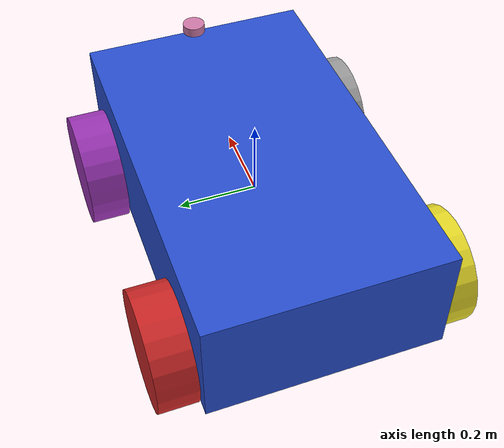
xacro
<?xml version="1.0"?>
<robot name="differential_drive_robot" xmlns:xacro="http://www.ros.org/wiki/xacro">

    <!-- Body dimensions -->
    <xacro:property name="body_link_x_dim" value="1"/>
    <xacro:property name="body_link_y_dim" value="0.6"/>
    <xacro:property name="body_link_z_dim" value="0.3"/>

    <!-- Wheel dimensions -->
    <xacro:property name="wheel_link_radius" value="0.15"/>
    <xacro:property name="wheel_link_length" value="0.1"/>
    <xacro:property name="wheel_link_z_location" value="-0.1"/>

    <!-- Material density -->
    <xacro:property name="body_density" value="2710.0"/>
    <xacro:property name="wheel_density" value="2710.0"/>

    <!-- Pi constant -->
    <xacro:property name="pi_const" value="3.14159265"/>

    <!-- Robot body and wheel mass -->
    <xacro:property name="body_mass" value="${body_density*body_link_x_dim*body_link_y_dim*body_link_z_dim}"/>
    <xacro:property name="wheel_mass" value="${wheel_density*pi_const*wheel_link_radius*wheel_link_radius*wheel_link_length}"/>

    <!-- Moments of inertia of the wheel -->
    <xacro:property name="Iz_wheel" value="${0.5*wheel_mass*wheel_link_radius*wheel_link_radius}" />
    <xacro:property name="I_wheel" value="${(1.0/12.0)*wheel_mass*(3.0*wheel_link_radius*wheel_link_radius+wheel_link_length*wheel_link_length)}" />

    <!-- Camera properties -->
    <xacro:property name="camera_width" value="800"/>
    <xacro:property name="camera_height" value="800"/>
    <xacro:property name="camera_fov" value="1.5707"/>
    <xacro:property name="camera_range" value="10.0"/>
    <xacro:property name="camera_mass" value="0.1"/>

    <!-- Lidar properties -->
    <xacro:property name="lidar_samples" value="720"/>
    <xacro:property name="lidar_resolution" value="1.0"/>
    <xacro:property name="lidar_range" value="30.0"/>

    <!-- This macro defines the complete inertial section of the wheel -->
    <xacro:macro name="inertia_wheel">
        <inertial>
            <origin rpy="0 1.570795 1.570795" xyz="0 0 0"/>
            <mass value="${wheel_mass}"/>
            <inertia ixx="${I_wheel}" ixy="0.0" ixz="0.0" iyy="${I_wheel}" iyz="0" izz="${Iz_wheel}" />
        </inertial>
    </xacro:macro>

    <!-- Define links and joints -->
    <!-- Body link -->
    <link name="body_link">
        <visual>
            <geometry>
                <box size="${body_link_x_dim} ${body_link_y_dim} ${body_link_z_dim}" />
            </geometry>
            <origin rpy="0 0 0" xyz="0 0 0"/>
        </visual>

        <collision>
            <geometry>
                <box size="${body_link_x_dim} ${body_link_y_dim} ${body_link_z_dim}" />
            </geometry>
            <origin rpy="0 0 0" xyz="0 0 0"/>
        </collision>
        <inertial>
            <origin rpy="0 0 0" xyz="0 0 0"/>
            <mass value="${body_mass}"/>
            <inertia
                ixx="${(1/12)*body_mass*(body_link_y_dim*body_link_y_dim+body_link_z_dim*body_link_z_dim)}" ixy="0"
                ixz="0" iyy="${(1/12)*body_mass*(body_link_x_dim*body_link_x_dim+body_link_z_dim*body_link_z_dim)}"
                iyz="0"
                izz="${(1/12)*body_mass*(body_link_y_dim*body_link_y_dim+body_link_x_dim*body_link_x_dim)}" />
        </inertial>
    </link>

    <!-- Wheel links and joints -->
    <link name="wheel1_link">
        <visual>
          <origin rpy="0 1.570795 1.570795" xyz="0 0 0"/>
          <geometry>
            <cylinder length="${wheel_link_length}" radius="${wheel_link_radius}"/>
          </geometry>
        </visual>
        <collision>
          <origin rpy="0 1.570795 1.570795" xyz="0 0 0"/>
          <geometry>
            <cylinder length="${wheel_link_length}" radius="${wheel_link_radius}"/>
          </geometry>
        </collision>
        <xacro:inertia_wheel/>
    </link>

    <link name="wheel2_link">
        <visual>
          <origin rpy="0 1.570795 1.570795" xyz="0 0 0"/>
          <geometry>
            <cylinder length="${wheel_link_length}" radius="${wheel_link_radius}"/>
          </geometry>
        </visual>
        <collision>
          <origin rpy="0 1.570795 1.570795" xyz="0 0 0"/>
          <geometry>
            <cylinder length="${wheel_link_length}" radius="${wheel_link_radius}"/>
          </geometry>
        </collision>
        <xacro:inertia_wheel/>
    </link>

    <link name="wheel3_link">
        <visual>
          <origin rpy="0 1.570795 1.570795" xyz="0 0 0"/>
          <geometry>
            <cylinder length="${wheel_link_length}" radius="${wheel_link_radius}"/>
          </geometry>
        </visual>
        <collision>
          <origin rpy="0 1.570795 1.570795" xyz="0 0 0"/>
          <geometry>
            <cylinder length="${wheel_link_length}" radius="${wheel_link_radius}"/>
          </geometry>
        </collision>
        <xacro:inertia_wheel/>
    </link>

    <link name="wheel4_link">
        <visual>
          <origin rpy="0 1.570795 1.570795" xyz="0 0 0"/>
          <geometry>
            <cylinder length="${wheel_link_length}" radius="${wheel_link_radius}"/>
          </geometry>
        </visual>
        <collision>
          <origin rpy="0 1.570795 1.570795" xyz="0 0 0"/>
          <geometry>
            <cylinder length="${wheel_link_length}" radius="${wheel_link_radius}"/>
          </geometry>
        </collision>
        <xacro:inertia_wheel/>
    </link>
    <link name="camera_link">
        <visual>
            <geometry>
                <box size="0.05 0.05 0.05" />
            </geometry>
            <origin rpy="0 0 0" xyz="0 0 0"/>
        </visual>
        <inertial>
			<mass value="${camera_mass}"/>
			<origin xyz="0 0 0" rpy="0 0 0"/>
			<inertia
		        ixx="1e-6" ixy="0.0" ixz="0.0"
		        iyy="1e-6" iyz="0.0"
		        izz="1e-6"
		    />
		</inertial>
        <collision>
			<origin xyz="0 0 0" rpy="0 0 0"/>
			<geometry>
				<box size="0.05 0.05 0.05"/>
			</geometry>
		</collision>
    </link>

    <link name="lidar_link">
        <visual>
            <geometry>
                <cylinder length="0.05" radius="0.03"/>
            </geometry>
            <origin rpy="0 0 0" xyz="0 0 0"/>
        </visual>
        <sensor type="ray" name="lidar">
            <ray>
                <scan>
                    <horizontal>
                        <samples>${lidar_samples}</samples>
                        <resolution>${lidar_resolution}</resolution>
                        <min_angle>-1.5708</min_angle>
                        <max_angle>1.5708</max_angle>
                    </horizontal>
                </scan>
                <range>
                    <min>0.0</min>
                    <max>${lidar_range}</max>
                </range>
            </ray>
            <plugin name="lidar_controller" filename="libgazebo_ros_laser.so"/>
        </sensor>
    </link>

    <!-- Dummy link to avoid Gazebo complaints -->
    <link name="dummy"></link>

    <joint name="wheel1_joint" type="continuous">
        <parent link="body_link"/>
        <child link="wheel1_link"/>
        <origin xyz="${-body_link_x_dim/2+1.2*wheel_link_radius} ${-body_link_y_dim/2-wheel_link_length/2} ${wheel_link_z_location}" rpy="0 0 0"/>
        <axis xyz="0 1 0"/>
        <limit effort="1000" velocity="1000"/>
        <dynamics damping="1.0" friction="1.0"/>
    </joint>

    <joint name="wheel2_joint" type="continuous">
        <parent link="body_link"/>
        <child link="wheel2_link"/>
        <origin xyz="${-body_link_x_dim/2+1.2*wheel_link_radius} ${body_link_y_dim/2+wheel_link_length/2} ${wheel_link_z_location}" rpy="0 0 0"/>
        <axis xyz="0 1 0"/>
        <limit effort="-1000" velocity="-1000"/>
        <dynamics damping="1.0" friction="1.0"/>
    </joint>

    <joint name="wheel3_joint" type="continuous">
        <parent link="body_link"/>
        <child link="wheel3_link"/>
        <origin xyz="${body_link_x_dim/2-1.2*wheel_link_radius} ${-body_link_y_dim/2-wheel_link_length/2} ${wheel_link_z_location}" rpy="0 0 0"/>
        <axis xyz="0 1 0"/>
        <limit effort="-1000" velocity="-1000"/>
        <dynamics damping="1.0" friction="1.0"/>
    </joint>

    <joint name="wheel4_joint" type="continuous">
        <parent link="body_link"/>
        <child link="wheel4_link"/>
        <origin xyz="${body_link_x_dim/2-1.2*wheel_link_radius} ${body_link_y_dim/2+wheel_link_length/2} ${wheel_link_z_location}" rpy="0 0 0"/>
        <axis xyz="0 1 0"/>
        <limit effort="1000" velocity="1000"/>
        <dynamics damping="1.0" friction="1.0"/>
    </joint>

    <!-- Camera link and joint -->
    <joint name="camera_joint" type="fixed">
        <parent link="body_link"/>
        <child link="camera_link"/>
        <origin xyz="${body_link_x_dim/2} 0 ${wheel_link_z_location + body_link_z_dim/2}" rpy="0 0 0"/>
        <axis xyz="0 1 0"/>
    </joint>
    <!-- Lidar link and joint -->
    <joint name="lidar_joint" type="fixed">
        <parent link="body_link"/>
        <child link="lidar_link"/>
        <origin xyz="${body_link_x_dim/2} 0 ${body_link_z_dim/2}" rpy="0 0 0"/> <!--${body_link_z_dim/2 + 0.05} -->
        <axis xyz="0 1 0"/>
    </joint>

    <joint name="dummy_joint" type="fixed">
        <origin xyz="0 0 0" rpy="0 0 0" />
        <parent link="dummy"/>
        <child link="body_link"/>
    </joint>

    <!-- Matériau et coefficients de friction pour le corps du robot -->
    <gazebo reference="body_link">
        <material>Gazebo/Blue</material>
		<kp>1000000.0</kp> <!-- kp and kd for rubber -->
		<kd>100.0</kd>
        <mu1>0.2</mu1>
        <mu2>0.2</mu2>
    </gazebo>

    <!-- Matériau et coefficients de friction pour les roues -->
    <gazebo reference="wheel1_link">
        <material>Gazebo/Yellow</material>
        <kp>1000000.0</kp> <!-- kp and kd for rubber -->
        <kd>100.0</kd>
        <mu1>0.2</mu1>
        <mu2>0.2</mu2>
    </gazebo>

    <gazebo reference="wheel2_link">
        <material>Gazebo/Red</material>
        <kp>1000000.0</kp> <!-- kp and kd for rubber -->
        <kd>100.0</kd>
        <mu1>0.2</mu1>
        <mu2>0.2</mu2>
    </gazebo>

    <gazebo reference="wheel3_link">
        <material>Gazebo/Grey</material>
        <kp>1000000.0</kp> <!-- kp and kd for rubber -->
        <kd>100.0</kd>
        <mu1>0.2</mu1>
        <mu2>0.2</mu2>
    </gazebo>

    <gazebo reference="wheel4_link">
        <material>Gazebo/Purple</material>
        <kp>1000000.0</kp> <!-- kp and kd for rubber -->
        <kd>100.0</kd>
        <mu1>0.2</mu1>
        <mu2>0.2</mu2>
    </gazebo>

    <!-- Include the file that defines extra Gazebo options and motion control driver -->
    <xacro:include filename="$(find robot_model_one_pkg)/urdf/robot.gazebo" />
</robot>
